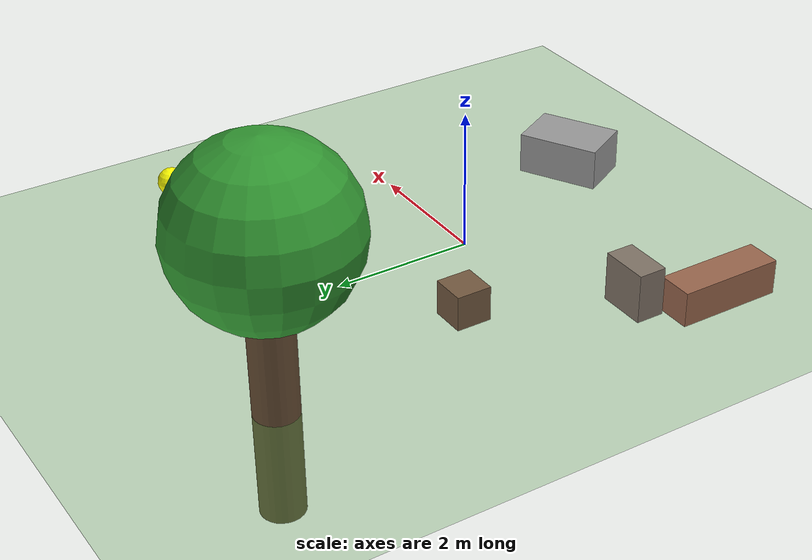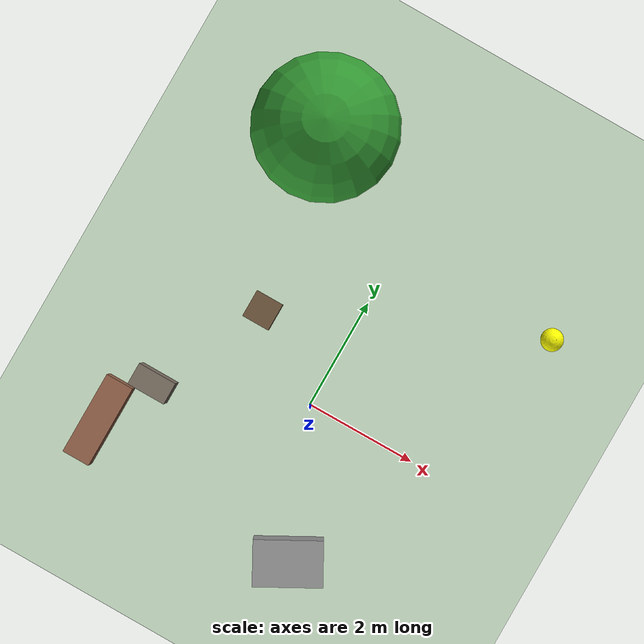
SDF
<?xml version="1.0"?>
<sdf version="1.7">
  <world name="whistle_world">

    <!-- Physics -->
    <physics type="ode">
      <max_step_size>0.001</max_step_size>
      <real_time_factor>1.0</real_time_factor>
      <real_time_update_rate>1000</real_time_update_rate>
    </physics>

    <!-- Scene: ambient, background and fog for depth -->
    <scene>
      <ambient>0.45 0.45 0.5 1</ambient>
      <background>0.6 0.7 0.85 1</background>
      <shadows>true</shadows>
    </scene>

    <!-- Directional sun-like light with shadows -->
    <light name="sun_light" type="directional">
      <cast_shadows>true</cast_shadows>
      <!-- position high above, orientation tilts down -->
      <pose>0 0 10 0.6 -0.4 0</pose>
      <diffuse>0.95 0.9 0.85 1</diffuse>
      <specular>0.2 0.2 0.2 1</specular>
      <attenuation>
        <range>1000</range>
      </attenuation>
    </light>

    <!-- Fog for atmospheric depth (subtle) -->
    <fog>
      <color>0.6 0.7 0.85</color>
      <type>linear</type>
      <density>0.003</density>
      <start>8</start>
      <end>40</end>
    </fog>

    <!-- Textured/colored ground (uses built-in Gazebo materials) -->
    <model name="textured_ground">
      <static>true</static>
      <pose>0 0 0 0 0 0</pose>
      <link name="link">
        <collision name="collision">
          <geometry>
            <plane>
              <normal>0 0 1</normal>
              <size>100 100</size>
            </plane>
          </geometry>
        </collision>
        <visual name="visual">
          <geometry>
            <plane>
              <normal>0 0 1</normal>
              <size>100 100</size>
            </plane>
          </geometry>
          <material>
            <script>
              <uri>file://media/materials/scripts/gazebo.material</uri>
              <name>Gazebo/Grass</name>
            </script>
            <ambient>0.36 0.44 0.29 1</ambient>
            <diffuse>0.36 0.44 0.29 1</diffuse>
            <specular>0.03 0.03 0.03 1</specular>
          </material>
        </visual>
      </link>
    </model>

    <!-- Add a couple of simple props to make the scene more lively -->
    <model name="crate_1">
      <static>true</static>
      <pose>-1.5 1 0.25 0 0 0</pose>
      <link name="link">
        <collision name="collision">
          <geometry>
            <box>
              <size>0.5 0.5 0.5</size>
            </box>
          </geometry>
        </collision>
        <visual name="visual">
          <geometry>
            <box>
              <size>0.5 0.5 0.5</size>
            </box>
          </geometry>
          <material>
            <ambient>0.45 0.35 0.25 1</ambient>
            <diffuse>0.45 0.35 0.25 1</diffuse>
            <specular>0.05 0.05 0.05 1</specular>
          </material>
        </visual>
      </link>
    </model>

    <model name="crate_2">
      <static>true</static>
      <pose> -2.5 -1 0.35 0 0 0</pose>
      <link name="link">
        <collision name="collision">
          <geometry>
            <box>
              <size>0.7 0.4 0.7</size>
            </box>
          </geometry>
        </collision>
        <visual name="visual">
          <geometry>
            <box>
              <size>0.7 0.4 0.7</size>
            </box>
          </geometry>
          <material>
            <ambient>0.5 0.45 0.4 1</ambient>
            <diffuse>0.5 0.45 0.4 1</diffuse>
            <specular>0.04 0.04 0.04 1</specular>
          </material>
        </visual>
      </link>
    </model>

    <!-- Walls removed to make the scene more open and realistic -->

    <!-- Realistic obstacles - positioned away from the whistle source -->

    <!-- Tree 1 -->
    <model name="tree_1">
      <static>true</static>
      <pose>-2 4 0 0 0 0</pose>
      <link name="trunk">
        <collision name="collision">
          <geometry>
            <cylinder>
              <radius>0.3</radius>
              <length>3.0</length>
            </cylinder>
          </geometry>
        </collision>
        <visual name="visual">
          <geometry>
            <cylinder>
              <radius>0.3</radius>
              <length>3.0</length>
            </cylinder>
          </geometry>
          <material>
            <ambient>0.4 0.3 0.2 1</ambient>
            <diffuse>0.4 0.3 0.2 1</diffuse>
          </material>
        </visual>
      </link>
      <link name="foliage">
        <pose>0 0 2.5 0 0 0</pose>
        <visual name="visual">
          <geometry>
            <sphere>
              <radius>1.2</radius>
            </sphere>
          </geometry>
          <material>
            <ambient>0.2 0.5 0.2 1</ambient>
            <diffuse>0.2 0.6 0.2 1</diffuse>
          </material>
        </visual>
      </link>
    </model>

    <!-- Rock cluster -->
    <model name="rock_cluster">
      <static>true</static>
      <pose>1 -2.5 0.3 0 0 0.5</pose>
      <link name="link">
        <collision name="collision">
          <geometry>
            <box>
              <size>1.2 0.8 0.6</size>
            </box>
          </geometry>
        </collision>
        <visual name="visual">
          <geometry>
            <box>
              <size>1.2 0.8 0.6</size>
            </box>
          </geometry>
          <material>
            <ambient>0.5 0.5 0.5 1</ambient>
            <diffuse>0.6 0.6 0.6 1</diffuse>
            <specular>0.1 0.1 0.1 1</specular>
          </material>
        </visual>
      </link>
    </model>

    <!-- Bench -->
    <model name="bench">
      <static>true</static>
      <pose>-3 -2 0.25 0 0 1.57</pose>
      <link name="link">
        <collision name="collision">
          <geometry>
            <box>
              <size>1.5 0.5 0.5</size>
            </box>
          </geometry>
        </collision>
        <visual name="visual">
          <geometry>
            <box>
              <size>1.5 0.5 0.5</size>
            </box>
          </geometry>
          <material>
            <ambient>0.6 0.4 0.3 1</ambient>
            <diffuse>0.6 0.4 0.3 1</diffuse>
          </material>
        </visual>
      </link>
    </model>

    <!-- VIRTUAL WHISTLE SOURCE (Visual Marker) -->
    <model name="whistle_source">
      <static>true</static>
      <pose>3 3 0.5 0 0 0</pose>
      <link name="link">
        <visual name="visual">
          <geometry>
            <sphere>
              <radius>0.2</radius>
            </sphere>
          </geometry>
          <material>
            <ambient>1.0 1.0 0.0 1</ambient>
            <diffuse>1.0 1.0 0.0 1</diffuse>
            <emissive>1.0 1.0 0.0 1</emissive>
          </material>
        </visual>
        <!-- Pulsing light to make it visible -->
        <light name="whistle_light" type="point">
          <pose>0 0 0 0 0 0</pose>
          <diffuse>1 1 0 1</diffuse>
          <specular>1 1 0 1</specular>
          <attenuation>
            <range>5</range>
            <linear>0.1</linear>
            <constant>0.2</constant>
            <quadratic>0.01</quadratic>
          </attenuation>
          <cast_shadows>true</cast_shadows>
        </light>
      </link>
    </model>

    <!-- Text label for whistle source -->
    <model name="whistle_label">
      <static>true</static>
      <pose>3 3 1.0 0 0 0</pose>
      <link name="link">
        <visual name="visual">
          <geometry>
            <box>
              <size>0.01 0.01 0.01</size>
            </box>
          </geometry>
        </visual>
      </link>
    </model>

  </world>
</sdf>
